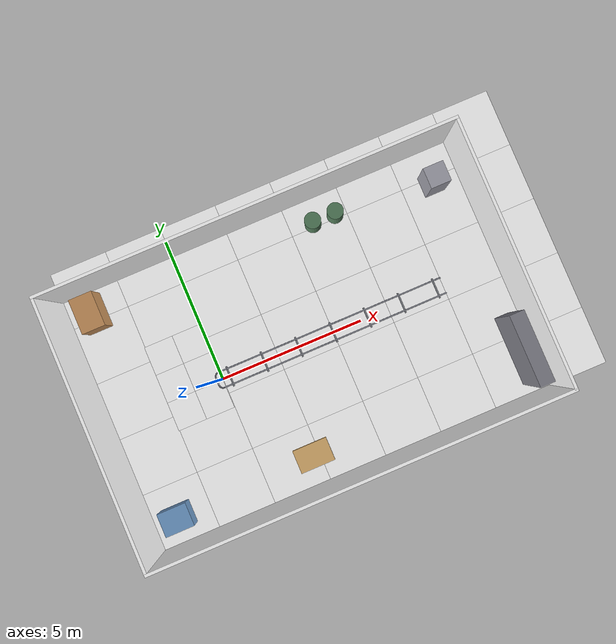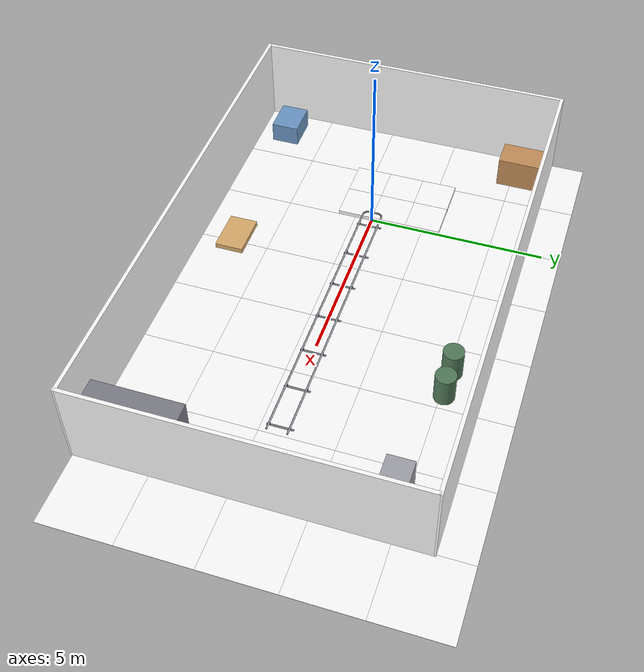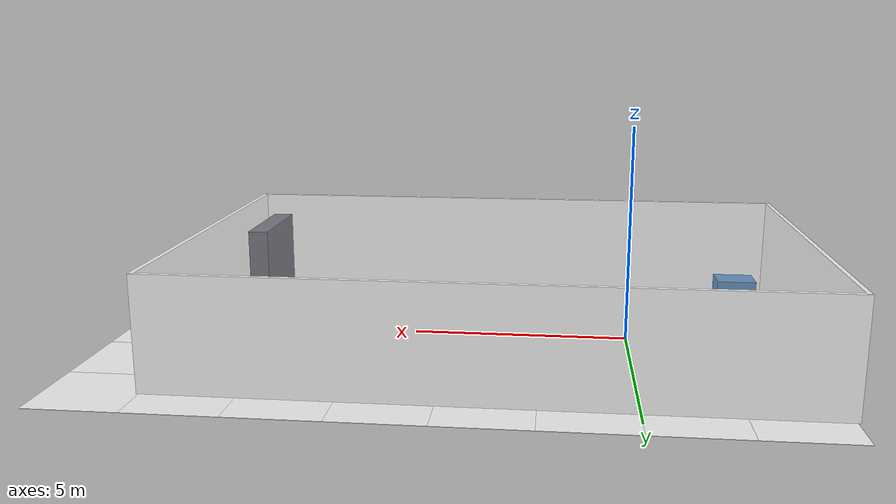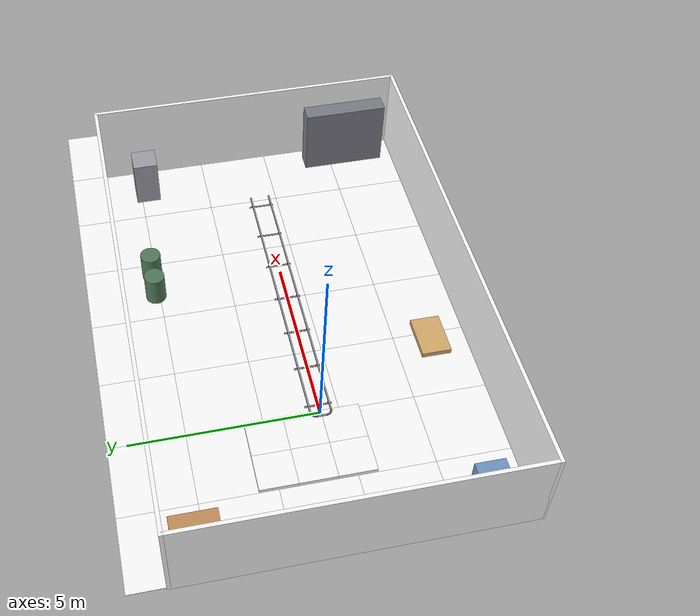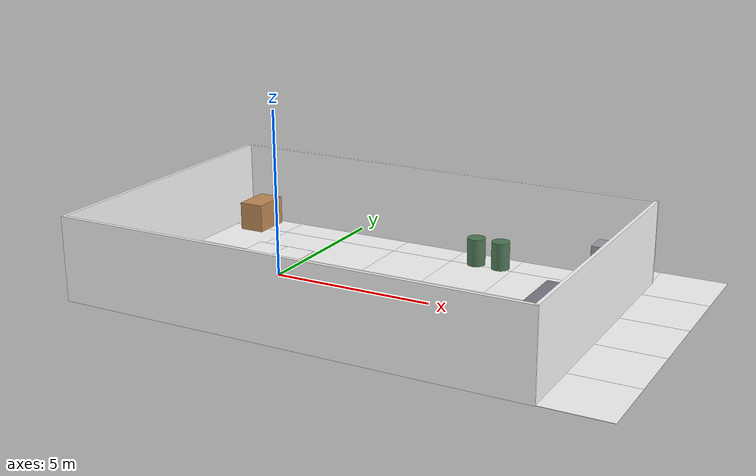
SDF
<?xml version="1.0" ?>
<!-- СГЕНЕРИРОВАНО scripts/gen_rails_world.py, руками не править. -->
<!-- Заезд на рельсы: фанера метр на метр и трубы с П-образным концом. -->
<sdf version="1.9">
  <world name="rails">
    <!-- Шаг 1 мс: у робота 48 отдельных тел роликов, и к ним
         добавился контакт бочки ролика с крутым бортом трубы. -->
    <physics name="1ms" type="dart">
      <max_step_size>0.001</max_step_size>
      <real_time_factor>1.0</real_time_factor>
    </physics>
    <plugin filename="gz-sim-physics-system" name="gz::sim::systems::Physics"/>
    <plugin filename="gz-sim-user-commands-system" name="gz::sim::systems::UserCommands"/>
    <plugin filename="gz-sim-scene-broadcaster-system" name="gz::sim::systems::SceneBroadcaster"/>
    <plugin filename="gz-sim-imu-system" name="gz::sim::systems::Imu"/>
    <plugin filename="gz-sim-sensors-system"
            name="gz::sim::systems::Sensors">
      <render_engine>ogre2</render_engine>
    </plugin>

    <light type="directional" name="sun">
      <cast_shadows>true</cast_shadows>
      <pose>0 0 10 0 0 0</pose>
      <diffuse>0.85 0.85 0.85 1</diffuse>
      <specular>0.25 0.25 0.25 1</specular>
      <direction>-0.4 0.2 -0.9</direction>
    </light>

    <model name="ground_plane">
      <static>true</static>
      <link name="link">
        <collision name="collision">
          <geometry><plane><normal>0 0 1</normal><size>60 60</size></plane></geometry>
          <surface><friction><ode><mu>1.0</mu><mu2>1.0</mu2></ode></friction></surface>
        </collision>
      </link>
    </model>

    <model name="floor">
      <static>true</static>
      <link name="link">
        <visual name="t_0_0">
          <pose>-3.000 -3.500 -0.005 0 0 3.1416</pose>
          <geometry><box><size>2.0 2.0 0.01</size></box></geometry>
          <material><diffuse>1 1 1 1</diffuse>
            <specular>0.1 0.1 0.1 1</specular>
            <pbr><metal><albedo_map>model://maze_nav/meshes/floor.png</albedo_map><roughness>0.9</roughness><metalness>0</metalness></metal></pbr></material>
        </visual>
        <visual name="t_0_1">
          <pose>-3.000 -1.500 -0.005 0 0 1.5708</pose>
          <geometry><box><size>2.0 2.0 0.01</size></box></geometry>
          <material><diffuse>1 1 1 1</diffuse>
            <specular>0.1 0.1 0.1 1</specular>
            <pbr><metal><albedo_map>model://maze_nav/meshes/floor.png</albedo_map><roughness>0.9</roughness><metalness>0</metalness></metal></pbr></material>
        </visual>
        <visual name="t_0_2">
          <pose>-3.000 0.500 -0.005 0 0 4.7124</pose>
          <geometry><box><size>2.0 2.0 0.01</size></box></geometry>
          <material><diffuse>1 1 1 1</diffuse>
            <specular>0.1 0.1 0.1 1</specular>
            <pbr><metal><albedo_map>model://maze_nav/meshes/floor.png</albedo_map><roughness>0.9</roughness><metalness>0</metalness></metal></pbr></material>
        </visual>
        <visual name="t_0_3">
          <pose>-3.000 2.500 -0.005 0 0 0.0000</pose>
          <geometry><box><size>2.0 2.0 0.01</size></box></geometry>
          <material><diffuse>1 1 1 1</diffuse>
            <specular>0.1 0.1 0.1 1</specular>
            <pbr><metal><albedo_map>model://maze_nav/meshes/floor.png</albedo_map><roughness>0.9</roughness><metalness>0</metalness></metal></pbr></material>
        </visual>
        <visual name="t_0_4">
          <pose>-3.000 4.500 -0.005 0 0 0.0000</pose>
          <geometry><box><size>2.0 2.0 0.01</size></box></geometry>
          <material><diffuse>1 1 1 1</diffuse>
            <specular>0.1 0.1 0.1 1</specular>
            <pbr><metal><albedo_map>model://maze_nav/meshes/floor.png</albedo_map><roughness>0.9</roughness><metalness>0</metalness></metal></pbr></material>
        </visual>
        <visual name="t_1_0">
          <pose>-1.000 -3.500 -0.005 0 0 0.0000</pose>
          <geometry><box><size>2.0 2.0 0.01</size></box></geometry>
          <material><diffuse>1 1 1 1</diffuse>
            <specular>0.1 0.1 0.1 1</specular>
            <pbr><metal><albedo_map>model://maze_nav/meshes/floor.png</albedo_map><roughness>0.9</roughness><metalness>0</metalness></metal></pbr></material>
        </visual>
        <visual name="t_1_1">
          <pose>-1.000 -1.500 -0.005 0 0 3.1416</pose>
          <geometry><box><size>2.0 2.0 0.01</size></box></geometry>
          <material><diffuse>1 1 1 1</diffuse>
            <specular>0.1 0.1 0.1 1</specular>
            <pbr><metal><albedo_map>model://maze_nav/meshes/floor.png</albedo_map><roughness>0.9</roughness><metalness>0</metalness></metal></pbr></material>
        </visual>
        <visual name="t_1_2">
          <pose>-1.000 0.500 -0.005 0 0 0.0000</pose>
          <geometry><box><size>2.0 2.0 0.01</size></box></geometry>
          <material><diffuse>1 1 1 1</diffuse>
            <specular>0.1 0.1 0.1 1</specular>
            <pbr><metal><albedo_map>model://maze_nav/meshes/floor.png</albedo_map><roughness>0.9</roughness><metalness>0</metalness></metal></pbr></material>
        </visual>
        <visual name="t_1_3">
          <pose>-1.000 2.500 -0.005 0 0 1.5708</pose>
          <geometry><box><size>2.0 2.0 0.01</size></box></geometry>
          <material><diffuse>1 1 1 1</diffuse>
            <specular>0.1 0.1 0.1 1</specular>
            <pbr><metal><albedo_map>model://maze_nav/meshes/floor.png</albedo_map><roughness>0.9</roughness><metalness>0</metalness></metal></pbr></material>
        </visual>
        <visual name="t_1_4">
          <pose>-1.000 4.500 -0.005 0 0 0.0000</pose>
          <geometry><box><size>2.0 2.0 0.01</size></box></geometry>
          <material><diffuse>1 1 1 1</diffuse>
            <specular>0.1 0.1 0.1 1</specular>
            <pbr><metal><albedo_map>model://maze_nav/meshes/floor.png</albedo_map><roughness>0.9</roughness><metalness>0</metalness></metal></pbr></material>
        </visual>
        <visual name="t_2_0">
          <pose>1.000 -3.500 -0.005 0 0 0.0000</pose>
          <geometry><box><size>2.0 2.0 0.01</size></box></geometry>
          <material><diffuse>1 1 1 1</diffuse>
            <specular>0.1 0.1 0.1 1</specular>
            <pbr><metal><albedo_map>model://maze_nav/meshes/floor.png</albedo_map><roughness>0.9</roughness><metalness>0</metalness></metal></pbr></material>
        </visual>
        <visual name="t_2_1">
          <pose>1.000 -1.500 -0.005 0 0 4.7124</pose>
          <geometry><box><size>2.0 2.0 0.01</size></box></geometry>
          <material><diffuse>1 1 1 1</diffuse>
            <specular>0.1 0.1 0.1 1</specular>
            <pbr><metal><albedo_map>model://maze_nav/meshes/floor.png</albedo_map><roughness>0.9</roughness><metalness>0</metalness></metal></pbr></material>
        </visual>
        <visual name="t_2_2">
          <pose>1.000 0.500 -0.005 0 0 4.7124</pose>
          <geometry><box><size>2.0 2.0 0.01</size></box></geometry>
          <material><diffuse>1 1 1 1</diffuse>
            <specular>0.1 0.1 0.1 1</specular>
            <pbr><metal><albedo_map>model://maze_nav/meshes/floor.png</albedo_map><roughness>0.9</roughness><metalness>0</metalness></metal></pbr></material>
        </visual>
        <visual name="t_2_3">
          <pose>1.000 2.500 -0.005 0 0 0.0000</pose>
          <geometry><box><size>2.0 2.0 0.01</size></box></geometry>
          <material><diffuse>1 1 1 1</diffuse>
            <specular>0.1 0.1 0.1 1</specular>
            <pbr><metal><albedo_map>model://maze_nav/meshes/floor.png</albedo_map><roughness>0.9</roughness><metalness>0</metalness></metal></pbr></material>
        </visual>
        <visual name="t_2_4">
          <pose>1.000 4.500 -0.005 0 0 1.5708</pose>
          <geometry><box><size>2.0 2.0 0.01</size></box></geometry>
          <material><diffuse>1 1 1 1</diffuse>
            <specular>0.1 0.1 0.1 1</specular>
            <pbr><metal><albedo_map>model://maze_nav/meshes/floor.png</albedo_map><roughness>0.9</roughness><metalness>0</metalness></metal></pbr></material>
        </visual>
        <visual name="t_3_0">
          <pose>3.000 -3.500 -0.005 0 0 0.0000</pose>
          <geometry><box><size>2.0 2.0 0.01</size></box></geometry>
          <material><diffuse>1 1 1 1</diffuse>
            <specular>0.1 0.1 0.1 1</specular>
            <pbr><metal><albedo_map>model://maze_nav/meshes/floor.png</albedo_map><roughness>0.9</roughness><metalness>0</metalness></metal></pbr></material>
        </visual>
        <visual name="t_3_1">
          <pose>3.000 -1.500 -0.005 0 0 4.7124</pose>
          <geometry><box><size>2.0 2.0 0.01</size></box></geometry>
          <material><diffuse>1 1 1 1</diffuse>
            <specular>0.1 0.1 0.1 1</specular>
            <pbr><metal><albedo_map>model://maze_nav/meshes/floor.png</albedo_map><roughness>0.9</roughness><metalness>0</metalness></metal></pbr></material>
        </visual>
        <visual name="t_3_2">
          <pose>3.000 0.500 -0.005 0 0 0.0000</pose>
          <geometry><box><size>2.0 2.0 0.01</size></box></geometry>
          <material><diffuse>1 1 1 1</diffuse>
            <specular>0.1 0.1 0.1 1</specular>
            <pbr><metal><albedo_map>model://maze_nav/meshes/floor.png</albedo_map><roughness>0.9</roughness><metalness>0</metalness></metal></pbr></material>
        </visual>
        <visual name="t_3_3">
          <pose>3.000 2.500 -0.005 0 0 0.0000</pose>
          <geometry><box><size>2.0 2.0 0.01</size></box></geometry>
          <material><diffuse>1 1 1 1</diffuse>
            <specular>0.1 0.1 0.1 1</specular>
            <pbr><metal><albedo_map>model://maze_nav/meshes/floor.png</albedo_map><roughness>0.9</roughness><metalness>0</metalness></metal></pbr></material>
        </visual>
        <visual name="t_3_4">
          <pose>3.000 4.500 -0.005 0 0 1.5708</pose>
          <geometry><box><size>2.0 2.0 0.01</size></box></geometry>
          <material><diffuse>1 1 1 1</diffuse>
            <specular>0.1 0.1 0.1 1</specular>
            <pbr><metal><albedo_map>model://maze_nav/meshes/floor.png</albedo_map><roughness>0.9</roughness><metalness>0</metalness></metal></pbr></material>
        </visual>
        <visual name="t_4_0">
          <pose>5.000 -3.500 -0.005 0 0 0.0000</pose>
          <geometry><box><size>2.0 2.0 0.01</size></box></geometry>
          <material><diffuse>1 1 1 1</diffuse>
            <specular>0.1 0.1 0.1 1</specular>
            <pbr><metal><albedo_map>model://maze_nav/meshes/floor.png</albedo_map><roughness>0.9</roughness><metalness>0</metalness></metal></pbr></material>
        </visual>
        <visual name="t_4_1">
          <pose>5.000 -1.500 -0.005 0 0 4.7124</pose>
          <geometry><box><size>2.0 2.0 0.01</size></box></geometry>
          <material><diffuse>1 1 1 1</diffuse>
            <specular>0.1 0.1 0.1 1</specular>
            <pbr><metal><albedo_map>model://maze_nav/meshes/floor.png</albedo_map><roughness>0.9</roughness><metalness>0</metalness></metal></pbr></material>
        </visual>
        <visual name="t_4_2">
          <pose>5.000 0.500 -0.005 0 0 0.0000</pose>
          <geometry><box><size>2.0 2.0 0.01</size></box></geometry>
          <material><diffuse>1 1 1 1</diffuse>
            <specular>0.1 0.1 0.1 1</specular>
            <pbr><metal><albedo_map>model://maze_nav/meshes/floor.png</albedo_map><roughness>0.9</roughness><metalness>0</metalness></metal></pbr></material>
        </visual>
        <visual name="t_4_3">
          <pose>5.000 2.500 -0.005 0 0 1.5708</pose>
          <geometry><box><size>2.0 2.0 0.01</size></box></geometry>
          <material><diffuse>1 1 1 1</diffuse>
            <specular>0.1 0.1 0.1 1</specular>
            <pbr><metal><albedo_map>model://maze_nav/meshes/floor.png</albedo_map><roughness>0.9</roughness><metalness>0</metalness></metal></pbr></material>
        </visual>
        <visual name="t_4_4">
          <pose>5.000 4.500 -0.005 0 0 0.0000</pose>
          <geometry><box><size>2.0 2.0 0.01</size></box></geometry>
          <material><diffuse>1 1 1 1</diffuse>
            <specular>0.1 0.1 0.1 1</specular>
            <pbr><metal><albedo_map>model://maze_nav/meshes/floor.png</albedo_map><roughness>0.9</roughness><metalness>0</metalness></metal></pbr></material>
        </visual>
        <visual name="t_5_0">
          <pose>7.000 -3.500 -0.005 0 0 1.5708</pose>
          <geometry><box><size>2.0 2.0 0.01</size></box></geometry>
          <material><diffuse>1 1 1 1</diffuse>
            <specular>0.1 0.1 0.1 1</specular>
            <pbr><metal><albedo_map>model://maze_nav/meshes/floor.png</albedo_map><roughness>0.9</roughness><metalness>0</metalness></metal></pbr></material>
        </visual>
        <visual name="t_5_1">
          <pose>7.000 -1.500 -0.005 0 0 3.1416</pose>
          <geometry><box><size>2.0 2.0 0.01</size></box></geometry>
          <material><diffuse>1 1 1 1</diffuse>
            <specular>0.1 0.1 0.1 1</specular>
            <pbr><metal><albedo_map>model://maze_nav/meshes/floor.png</albedo_map><roughness>0.9</roughness><metalness>0</metalness></metal></pbr></material>
        </visual>
        <visual name="t_5_2">
          <pose>7.000 0.500 -0.005 0 0 4.7124</pose>
          <geometry><box><size>2.0 2.0 0.01</size></box></geometry>
          <material><diffuse>1 1 1 1</diffuse>
            <specular>0.1 0.1 0.1 1</specular>
            <pbr><metal><albedo_map>model://maze_nav/meshes/floor.png</albedo_map><roughness>0.9</roughness><metalness>0</metalness></metal></pbr></material>
        </visual>
        <visual name="t_5_3">
          <pose>7.000 2.500 -0.005 0 0 1.5708</pose>
          <geometry><box><size>2.0 2.0 0.01</size></box></geometry>
          <material><diffuse>1 1 1 1</diffuse>
            <specular>0.1 0.1 0.1 1</specular>
            <pbr><metal><albedo_map>model://maze_nav/meshes/floor.png</albedo_map><roughness>0.9</roughness><metalness>0</metalness></metal></pbr></material>
        </visual>
        <visual name="t_5_4">
          <pose>7.000 4.500 -0.005 0 0 0.0000</pose>
          <geometry><box><size>2.0 2.0 0.01</size></box></geometry>
          <material><diffuse>1 1 1 1</diffuse>
            <specular>0.1 0.1 0.1 1</specular>
            <pbr><metal><albedo_map>model://maze_nav/meshes/floor.png</albedo_map><roughness>0.9</roughness><metalness>0</metalness></metal></pbr></material>
        </visual>
        <visual name="t_6_0">
          <pose>9.000 -3.500 -0.005 0 0 3.1416</pose>
          <geometry><box><size>2.0 2.0 0.01</size></box></geometry>
          <material><diffuse>1 1 1 1</diffuse>
            <specular>0.1 0.1 0.1 1</specular>
            <pbr><metal><albedo_map>model://maze_nav/meshes/floor.png</albedo_map><roughness>0.9</roughness><metalness>0</metalness></metal></pbr></material>
        </visual>
        <visual name="t_6_1">
          <pose>9.000 -1.500 -0.005 0 0 1.5708</pose>
          <geometry><box><size>2.0 2.0 0.01</size></box></geometry>
          <material><diffuse>1 1 1 1</diffuse>
            <specular>0.1 0.1 0.1 1</specular>
            <pbr><metal><albedo_map>model://maze_nav/meshes/floor.png</albedo_map><roughness>0.9</roughness><metalness>0</metalness></metal></pbr></material>
        </visual>
        <visual name="t_6_2">
          <pose>9.000 0.500 -0.005 0 0 0.0000</pose>
          <geometry><box><size>2.0 2.0 0.01</size></box></geometry>
          <material><diffuse>1 1 1 1</diffuse>
            <specular>0.1 0.1 0.1 1</specular>
            <pbr><metal><albedo_map>model://maze_nav/meshes/floor.png</albedo_map><roughness>0.9</roughness><metalness>0</metalness></metal></pbr></material>
        </visual>
        <visual name="t_6_3">
          <pose>9.000 2.500 -0.005 0 0 1.5708</pose>
          <geometry><box><size>2.0 2.0 0.01</size></box></geometry>
          <material><diffuse>1 1 1 1</diffuse>
            <specular>0.1 0.1 0.1 1</specular>
            <pbr><metal><albedo_map>model://maze_nav/meshes/floor.png</albedo_map><roughness>0.9</roughness><metalness>0</metalness></metal></pbr></material>
        </visual>
        <visual name="t_6_4">
          <pose>9.000 4.500 -0.005 0 0 3.1416</pose>
          <geometry><box><size>2.0 2.0 0.01</size></box></geometry>
          <material><diffuse>1 1 1 1</diffuse>
            <specular>0.1 0.1 0.1 1</specular>
            <pbr><metal><albedo_map>model://maze_nav/meshes/floor.png</albedo_map><roughness>0.9</roughness><metalness>0</metalness></metal></pbr></material>
        </visual>
        <visual name="t_7_0">
          <pose>11.000 -3.500 -0.005 0 0 0.0000</pose>
          <geometry><box><size>2.0 2.0 0.01</size></box></geometry>
          <material><diffuse>1 1 1 1</diffuse>
            <specular>0.1 0.1 0.1 1</specular>
            <pbr><metal><albedo_map>model://maze_nav/meshes/floor.png</albedo_map><roughness>0.9</roughness><metalness>0</metalness></metal></pbr></material>
        </visual>
        <visual name="t_7_1">
          <pose>11.000 -1.500 -0.005 0 0 0.0000</pose>
          <geometry><box><size>2.0 2.0 0.01</size></box></geometry>
          <material><diffuse>1 1 1 1</diffuse>
            <specular>0.1 0.1 0.1 1</specular>
            <pbr><metal><albedo_map>model://maze_nav/meshes/floor.png</albedo_map><roughness>0.9</roughness><metalness>0</metalness></metal></pbr></material>
        </visual>
        <visual name="t_7_2">
          <pose>11.000 0.500 -0.005 0 0 0.0000</pose>
          <geometry><box><size>2.0 2.0 0.01</size></box></geometry>
          <material><diffuse>1 1 1 1</diffuse>
            <specular>0.1 0.1 0.1 1</specular>
            <pbr><metal><albedo_map>model://maze_nav/meshes/floor.png</albedo_map><roughness>0.9</roughness><metalness>0</metalness></metal></pbr></material>
        </visual>
        <visual name="t_7_3">
          <pose>11.000 2.500 -0.005 0 0 1.5708</pose>
          <geometry><box><size>2.0 2.0 0.01</size></box></geometry>
          <material><diffuse>1 1 1 1</diffuse>
            <specular>0.1 0.1 0.1 1</specular>
            <pbr><metal><albedo_map>model://maze_nav/meshes/floor.png</albedo_map><roughness>0.9</roughness><metalness>0</metalness></metal></pbr></material>
        </visual>
        <visual name="t_7_4">
          <pose>11.000 4.500 -0.005 0 0 4.7124</pose>
          <geometry><box><size>2.0 2.0 0.01</size></box></geometry>
          <material><diffuse>1 1 1 1</diffuse>
            <specular>0.1 0.1 0.1 1</specular>
            <pbr><metal><albedo_map>model://maze_nav/meshes/floor.png</albedo_map><roughness>0.9</roughness><metalness>0</metalness></metal></pbr></material>
        </visual>
      </link>
    </model>

    <!-- Стены. Текстура на них мельче и бледнее пола: яркая стена
         даёт слишком жирные признаки, и одометрия в симуляторе
         выглядела бы лучше, чем окажется на железе. -->
    <model name="walls">
      <static>true</static>
      <link name="link">
        <collision name="w0_collision">
          <pose>3.000 4.500 1.250 0 0 0</pose>
          <geometry><box><size>14.100 0.100 2.5</size></box></geometry>
        </collision>
        <visual name="w0_visual">
          <pose>3.000 4.500 1.250 0 0 0</pose>
          <geometry><box><size>14.100 0.100 2.5</size></box></geometry>
          <material><diffuse>1 1 1 1</diffuse>
            <pbr><metal><albedo_map>model://maze_nav/meshes/wall.png</albedo_map><roughness>0.95</roughness><metalness>0</metalness></metal></pbr></material>
        </visual>
        <collision name="w1_collision">
          <pose>3.000 -4.500 1.250 0 0 0</pose>
          <geometry><box><size>14.100 0.100 2.5</size></box></geometry>
        </collision>
        <visual name="w1_visual">
          <pose>3.000 -4.500 1.250 0 0 0</pose>
          <geometry><box><size>14.100 0.100 2.5</size></box></geometry>
          <material><diffuse>1 1 1 1</diffuse>
            <pbr><metal><albedo_map>model://maze_nav/meshes/wall.png</albedo_map><roughness>0.95</roughness><metalness>0</metalness></metal></pbr></material>
        </visual>
        <collision name="w2_collision">
          <pose>-4.000 0.000 1.250 0 0 0</pose>
          <geometry><box><size>0.100 9.000 2.5</size></box></geometry>
        </collision>
        <visual name="w2_visual">
          <pose>-4.000 0.000 1.250 0 0 0</pose>
          <geometry><box><size>0.100 9.000 2.5</size></box></geometry>
          <material><diffuse>1 1 1 1</diffuse>
            <pbr><metal><albedo_map>model://maze_nav/meshes/wall.png</albedo_map><roughness>0.95</roughness><metalness>0</metalness></metal></pbr></material>
        </visual>
        <collision name="w3_collision">
          <pose>10.000 0.000 1.250 0 0 0</pose>
          <geometry><box><size>0.100 9.000 2.5</size></box></geometry>
        </collision>
        <visual name="w3_visual">
          <pose>10.000 0.000 1.250 0 0 0</pose>
          <geometry><box><size>0.100 9.000 2.5</size></box></geometry>
          <material><diffuse>1 1 1 1</diffuse>
            <pbr><metal><albedo_map>model://maze_nav/meshes/wall.png</albedo_map><roughness>0.95</roughness><metalness>0</metalness></metal></pbr></material>
        </visual>
      </link>
    </model>

    <!-- Предметы. Стоят по краям, чтобы не мешать заезду, но
         попадали в кадр при осмотре: вертикальные грани дают
         признаки, которых нет ни на полу, ни на гладкой стене. -->
    <model name="obj_0">
      <static>true</static>
      <link name="link">
        <collision name="collision">
          <pose>-3.100 3.700 0.450 0 0 0</pose>
          <geometry><box><size>0.8 1.2 0.9</size></box></geometry>
        </collision>
        <visual name="visual">
          <pose>-3.100 3.700 0.450 0 0 0</pose>
          <geometry><box><size>0.8 1.2 0.9</size></box></geometry>
          <material><ambient>0.55 0.40 0.25 1</ambient>
            <diffuse>0.77 0.56 0.35 1</diffuse></material>
        </visual>
      </link>
    </model>
    <model name="obj_1">
      <static>true</static>
      <link name="link">
        <collision name="collision">
          <pose>-3.100 -3.600 0.300 0 0 0</pose>
          <geometry><box><size>1.0 0.8 0.6</size></box></geometry>
        </collision>
        <visual name="visual">
          <pose>-3.100 -3.600 0.300 0 0 0</pose>
          <geometry><box><size>1.0 0.8 0.6</size></box></geometry>
          <material><ambient>0.30 0.42 0.55 1</ambient>
            <diffuse>0.42 0.59 0.77 1</diffuse></material>
        </visual>
      </link>
    </model>
    <model name="obj_2">
      <static>true</static>
      <link name="link">
        <collision name="collision">
          <pose>9.000 3.300 0.700 0 0 0</pose>
          <geometry><box><size>0.7 0.7 1.4</size></box></geometry>
        </collision>
        <visual name="visual">
          <pose>9.000 3.300 0.700 0 0 0</pose>
          <geometry><box><size>0.7 0.7 1.4</size></box></geometry>
          <material><ambient>0.45 0.45 0.48 1</ambient>
            <diffuse>0.63 0.63 0.67 1</diffuse></material>
        </visual>
      </link>
    </model>
    <model name="obj_3">
      <static>true</static>
      <link name="link">
        <collision name="collision">
          <pose>9.400 -2.900 1.000 0 0 0</pose>
          <geometry><box><size>0.5 2.4 2.0</size></box></geometry>
        </collision>
        <visual name="visual">
          <pose>9.400 -2.900 1.000 0 0 0</pose>
          <geometry><box><size>0.5 2.4 2.0</size></box></geometry>
          <material><ambient>0.35 0.35 0.38 1</ambient>
            <diffuse>0.49 0.49 0.53 1</diffuse></material>
        </visual>
      </link>
    </model>
    <model name="obj_4">
      <static>true</static>
      <link name="link">
        <collision name="collision">
          <pose>1.800 -3.500 0.075 0 0 0</pose>
          <geometry><box><size>1.2 0.8 0.15</size></box></geometry>
        </collision>
        <visual name="visual">
          <pose>1.800 -3.500 0.075 0 0 0</pose>
          <geometry><box><size>1.2 0.8 0.15</size></box></geometry>
          <material><ambient>0.60 0.48 0.30 1</ambient>
            <diffuse>0.84 0.67 0.42 1</diffuse></material>
        </visual>
      </link>
    </model>
    <model name="drum_0">
      <static>true</static>
      <link name="link">
        <collision name="collision">
          <pose>4.800 3.600 0.425 0 0 0</pose>
          <geometry><cylinder><radius>0.28</radius><length>0.85</length></cylinder></geometry>
        </collision>
        <visual name="visual">
          <pose>4.800 3.600 0.425 0 0 0</pose>
          <geometry><cylinder><radius>0.28</radius><length>0.85</length></cylinder></geometry>
          <material><ambient>0.20 0.30 0.22 1</ambient>
            <diffuse>0.32 0.48 0.35 1</diffuse></material>
        </visual>
      </link>
    </model>
    <model name="drum_1">
      <static>true</static>
      <link name="link">
        <collision name="collision">
          <pose>5.600 3.600 0.425 0 0 0</pose>
          <geometry><cylinder><radius>0.28</radius><length>0.85</length></cylinder></geometry>
        </collision>
        <visual name="visual">
          <pose>5.600 3.600 0.425 0 0 0</pose>
          <geometry><cylinder><radius>0.28</radius><length>0.85</length></cylinder></geometry>
          <material><ambient>0.20 0.30 0.22 1</ambient>
            <diffuse>0.32 0.48 0.35 1</diffuse></material>
        </visual>
      </link>
    </model>

    <model name="deck">
      <static>true</static>
      <link name="link">
        <collision name="collision">
          <pose>-1.0000 0.5000 0.0600 0 0 0</pose>
          <geometry><box><size>2.000 3.000 0.1200</size></box></geometry>
          <surface><friction><ode><mu>0.9</mu><mu2>0.9</mu2></ode></friction></surface>
        </collision>
        <visual name="sheet_0_0">
          <pose>-1.5000 -0.5000 0.0600 0 0 0.0000</pose>
          <geometry><box><size>1.0000 1.0000 0.1200</size></box></geometry>
          <material><diffuse>1 1 1 1</diffuse>
            <pbr><metal><albedo_map>model://maze_nav/meshes/plywood.png</albedo_map><roughness>0.85</roughness><metalness>0</metalness></metal></pbr></material>
        </visual>
        <visual name="sheet_0_1">
          <pose>-1.5000 0.5000 0.0600 0 0 1.5708</pose>
          <geometry><box><size>1.0000 1.0000 0.1200</size></box></geometry>
          <material><diffuse>1 1 1 1</diffuse>
            <pbr><metal><albedo_map>model://maze_nav/meshes/plywood.png</albedo_map><roughness>0.85</roughness><metalness>0</metalness></metal></pbr></material>
        </visual>
        <visual name="sheet_0_2">
          <pose>-1.5000 1.5000 0.0600 0 0 0.0000</pose>
          <geometry><box><size>1.0000 1.0000 0.1200</size></box></geometry>
          <material><diffuse>1 1 1 1</diffuse>
            <pbr><metal><albedo_map>model://maze_nav/meshes/plywood.png</albedo_map><roughness>0.85</roughness><metalness>0</metalness></metal></pbr></material>
        </visual>
        <visual name="sheet_1_0">
          <pose>-0.5000 -0.5000 0.0600 0 0 1.5708</pose>
          <geometry><box><size>1.0000 1.0000 0.1200</size></box></geometry>
          <material><diffuse>1 1 1 1</diffuse>
            <pbr><metal><albedo_map>model://maze_nav/meshes/plywood.png</albedo_map><roughness>0.85</roughness><metalness>0</metalness></metal></pbr></material>
        </visual>
        <visual name="sheet_1_1">
          <pose>-0.5000 0.5000 0.0600 0 0 0.0000</pose>
          <geometry><box><size>1.0000 1.0000 0.1200</size></box></geometry>
          <material><diffuse>1 1 1 1</diffuse>
            <pbr><metal><albedo_map>model://maze_nav/meshes/plywood.png</albedo_map><roughness>0.85</roughness><metalness>0</metalness></metal></pbr></material>
        </visual>
        <visual name="sheet_1_2">
          <pose>-0.5000 1.5000 0.0600 0 0 1.5708</pose>
          <geometry><box><size>1.0000 1.0000 0.1200</size></box></geometry>
          <material><diffuse>1 1 1 1</diffuse>
            <pbr><metal><albedo_map>model://maze_nav/meshes/plywood.png</albedo_map><roughness>0.85</roughness><metalness>0</metalness></metal></pbr></material>
        </visual>
      </link>
    </model>

    <!-- Рельсы: труба 51x2 мм,
         колея 545 мм, П-образный конец с радиусом
         145 мм и прямой перемычкой 255 мм.
         Масса прямых участков 39 кг. -->
    <model name="rails">
      <static>true</static>
      <link name="link">
        <collision name="collision_rail_l">
          <pose>3.9803 0.2725 0.1455 0 1.570796 0</pose>
          <geometry><cylinder><radius>0.02550</radius><length>8.0395</length></cylinder></geometry>
          <surface><friction><ode><mu>0.6</mu><mu2>0.6</mu2></ode></friction></surface>
        </collision>
        <visual name="visual_rail_l">
          <pose>3.9803 0.2725 0.1455 0 1.570796 0</pose>
          <geometry><cylinder><radius>0.02550</radius><length>8.0395</length></cylinder></geometry>
          <material><ambient>0.30 0.30 0.33 1</ambient>
            <diffuse>0.55 0.56 0.60 1</diffuse>
            <specular>0.45 0.45 0.45 1</specular></material>
        </visual>
        <collision name="collision_rail_r">
          <pose>3.9803 -0.2725 0.1455 0 1.570796 0</pose>
          <geometry><cylinder><radius>0.02550</radius><length>8.0395</length></cylinder></geometry>
          <surface><friction><ode><mu>0.6</mu><mu2>0.6</mu2></ode></friction></surface>
        </collision>
        <visual name="visual_rail_r">
          <pose>3.9803 -0.2725 0.1455 0 1.570796 0</pose>
          <geometry><cylinder><radius>0.02550</radius><length>8.0395</length></cylinder></geometry>
          <material><ambient>0.30 0.30 0.33 1</ambient>
            <diffuse>0.55 0.56 0.60 1</diffuse>
            <specular>0.45 0.45 0.45 1</specular></material>
        </visual>
        <collision name="collision_cross">
          <pose>-0.1845 0 0.1455 1.570796 0 0</pose>
          <geometry><cylinder><radius>0.02550</radius><length>0.2550</length></cylinder></geometry>
          <surface><friction><ode><mu>0.6</mu><mu2>0.6</mu2></ode></friction></surface>
        </collision>
        <visual name="visual_cross">
          <pose>-0.1845 0 0.1455 1.570796 0 0</pose>
          <geometry><cylinder><radius>0.02550</radius><length>0.2550</length></cylinder></geometry>
          <material><ambient>0.30 0.30 0.33 1</ambient>
            <diffuse>0.55 0.56 0.60 1</diffuse>
            <specular>0.45 0.45 0.45 1</specular></material>
        </visual>
        <collision name="collision_arc_l_0">
          <pose>-0.1843 0.1356 0.1455 0 1.570796 1.514696</pose>
          <geometry><cylinder><radius>0.02550</radius><length>0.0187</length></cylinder></geometry>
          <surface><friction><ode><mu>0.6</mu><mu2>0.6</mu2></ode></friction></surface>
        </collision>
        <visual name="visual_arc_l_0">
          <pose>-0.1843 0.1356 0.1455 0 1.570796 1.514696</pose>
          <geometry><cylinder><radius>0.02550</radius><length>0.0187</length></cylinder></geometry>
          <material><ambient>0.30 0.30 0.33 1</ambient>
            <diffuse>0.55 0.56 0.60 1</diffuse>
            <specular>0.45 0.45 0.45 1</specular></material>
        </visual>
        <collision name="collision_arc_l_1">
          <pose>-0.1825 0.1518 0.1455 0 1.570796 1.402497</pose>
          <geometry><cylinder><radius>0.02550</radius><length>0.0187</length></cylinder></geometry>
          <surface><friction><ode><mu>0.6</mu><mu2>0.6</mu2></ode></friction></surface>
        </collision>
        <visual name="visual_arc_l_1">
          <pose>-0.1825 0.1518 0.1455 0 1.570796 1.402497</pose>
          <geometry><cylinder><radius>0.02550</radius><length>0.0187</length></cylinder></geometry>
          <material><ambient>0.30 0.30 0.33 1</ambient>
            <diffuse>0.55 0.56 0.60 1</diffuse>
            <specular>0.45 0.45 0.45 1</specular></material>
        </visual>
        <collision name="collision_arc_l_2">
          <pose>-0.1788 0.1676 0.1455 0 1.570796 1.290297</pose>
          <geometry><cylinder><radius>0.02550</radius><length>0.0187</length></cylinder></geometry>
          <surface><friction><ode><mu>0.6</mu><mu2>0.6</mu2></ode></friction></surface>
        </collision>
        <visual name="visual_arc_l_2">
          <pose>-0.1788 0.1676 0.1455 0 1.570796 1.290297</pose>
          <geometry><cylinder><radius>0.02550</radius><length>0.0187</length></cylinder></geometry>
          <material><ambient>0.30 0.30 0.33 1</ambient>
            <diffuse>0.55 0.56 0.60 1</diffuse>
            <specular>0.45 0.45 0.45 1</specular></material>
        </visual>
        <collision name="collision_arc_l_3">
          <pose>-0.1735 0.1830 0.1455 0 1.570796 1.178097</pose>
          <geometry><cylinder><radius>0.02550</radius><length>0.0187</length></cylinder></geometry>
          <surface><friction><ode><mu>0.6</mu><mu2>0.6</mu2></ode></friction></surface>
        </collision>
        <visual name="visual_arc_l_3">
          <pose>-0.1735 0.1830 0.1455 0 1.570796 1.178097</pose>
          <geometry><cylinder><radius>0.02550</radius><length>0.0187</length></cylinder></geometry>
          <material><ambient>0.30 0.30 0.33 1</ambient>
            <diffuse>0.55 0.56 0.60 1</diffuse>
            <specular>0.45 0.45 0.45 1</specular></material>
        </visual>
        <collision name="collision_arc_l_4">
          <pose>-0.1664 0.1976 0.1455 0 1.570796 1.065898</pose>
          <geometry><cylinder><radius>0.02550</radius><length>0.0187</length></cylinder></geometry>
          <surface><friction><ode><mu>0.6</mu><mu2>0.6</mu2></ode></friction></surface>
        </collision>
        <visual name="visual_arc_l_4">
          <pose>-0.1664 0.1976 0.1455 0 1.570796 1.065898</pose>
          <geometry><cylinder><radius>0.02550</radius><length>0.0187</length></cylinder></geometry>
          <material><ambient>0.30 0.30 0.33 1</ambient>
            <diffuse>0.55 0.56 0.60 1</diffuse>
            <specular>0.45 0.45 0.45 1</specular></material>
        </visual>
        <collision name="collision_arc_l_5">
          <pose>-0.1578 0.2114 0.1455 0 1.570796 0.953698</pose>
          <geometry><cylinder><radius>0.02550</radius><length>0.0187</length></cylinder></geometry>
          <surface><friction><ode><mu>0.6</mu><mu2>0.6</mu2></ode></friction></surface>
        </collision>
        <visual name="visual_arc_l_5">
          <pose>-0.1578 0.2114 0.1455 0 1.570796 0.953698</pose>
          <geometry><cylinder><radius>0.02550</radius><length>0.0187</length></cylinder></geometry>
          <material><ambient>0.30 0.30 0.33 1</ambient>
            <diffuse>0.55 0.56 0.60 1</diffuse>
            <specular>0.45 0.45 0.45 1</specular></material>
        </visual>
        <collision name="collision_arc_l_6">
          <pose>-0.1476 0.2241 0.1455 0 1.570796 0.841498</pose>
          <geometry><cylinder><radius>0.02550</radius><length>0.0187</length></cylinder></geometry>
          <surface><friction><ode><mu>0.6</mu><mu2>0.6</mu2></ode></friction></surface>
        </collision>
        <visual name="visual_arc_l_6">
          <pose>-0.1476 0.2241 0.1455 0 1.570796 0.841498</pose>
          <geometry><cylinder><radius>0.02550</radius><length>0.0187</length></cylinder></geometry>
          <material><ambient>0.30 0.30 0.33 1</ambient>
            <diffuse>0.55 0.56 0.60 1</diffuse>
            <specular>0.45 0.45 0.45 1</specular></material>
        </visual>
        <collision name="collision_arc_l_7">
          <pose>-0.1361 0.2356 0.1455 0 1.570796 0.729298</pose>
          <geometry><cylinder><radius>0.02550</radius><length>0.0187</length></cylinder></geometry>
          <surface><friction><ode><mu>0.6</mu><mu2>0.6</mu2></ode></friction></surface>
        </collision>
        <visual name="visual_arc_l_7">
          <pose>-0.1361 0.2356 0.1455 0 1.570796 0.729298</pose>
          <geometry><cylinder><radius>0.02550</radius><length>0.0187</length></cylinder></geometry>
          <material><ambient>0.30 0.30 0.33 1</ambient>
            <diffuse>0.55 0.56 0.60 1</diffuse>
            <specular>0.45 0.45 0.45 1</specular></material>
        </visual>
        <collision name="collision_arc_l_8">
          <pose>-0.1234 0.2458 0.1455 0 1.570796 0.617099</pose>
          <geometry><cylinder><radius>0.02550</radius><length>0.0187</length></cylinder></geometry>
          <surface><friction><ode><mu>0.6</mu><mu2>0.6</mu2></ode></friction></surface>
        </collision>
        <visual name="visual_arc_l_8">
          <pose>-0.1234 0.2458 0.1455 0 1.570796 0.617099</pose>
          <geometry><cylinder><radius>0.02550</radius><length>0.0187</length></cylinder></geometry>
          <material><ambient>0.30 0.30 0.33 1</ambient>
            <diffuse>0.55 0.56 0.60 1</diffuse>
            <specular>0.45 0.45 0.45 1</specular></material>
        </visual>
        <collision name="collision_arc_l_9">
          <pose>-0.1096 0.2544 0.1455 0 1.570796 0.504899</pose>
          <geometry><cylinder><radius>0.02550</radius><length>0.0187</length></cylinder></geometry>
          <surface><friction><ode><mu>0.6</mu><mu2>0.6</mu2></ode></friction></surface>
        </collision>
        <visual name="visual_arc_l_9">
          <pose>-0.1096 0.2544 0.1455 0 1.570796 0.504899</pose>
          <geometry><cylinder><radius>0.02550</radius><length>0.0187</length></cylinder></geometry>
          <material><ambient>0.30 0.30 0.33 1</ambient>
            <diffuse>0.55 0.56 0.60 1</diffuse>
            <specular>0.45 0.45 0.45 1</specular></material>
        </visual>
        <collision name="collision_arc_l_10">
          <pose>-0.0950 0.2615 0.1455 0 1.570796 0.392699</pose>
          <geometry><cylinder><radius>0.02550</radius><length>0.0187</length></cylinder></geometry>
          <surface><friction><ode><mu>0.6</mu><mu2>0.6</mu2></ode></friction></surface>
        </collision>
        <visual name="visual_arc_l_10">
          <pose>-0.0950 0.2615 0.1455 0 1.570796 0.392699</pose>
          <geometry><cylinder><radius>0.02550</radius><length>0.0187</length></cylinder></geometry>
          <material><ambient>0.30 0.30 0.33 1</ambient>
            <diffuse>0.55 0.56 0.60 1</diffuse>
            <specular>0.45 0.45 0.45 1</specular></material>
        </visual>
        <collision name="collision_arc_l_11">
          <pose>-0.0796 0.2668 0.1455 0 1.570796 0.280499</pose>
          <geometry><cylinder><radius>0.02550</radius><length>0.0187</length></cylinder></geometry>
          <surface><friction><ode><mu>0.6</mu><mu2>0.6</mu2></ode></friction></surface>
        </collision>
        <visual name="visual_arc_l_11">
          <pose>-0.0796 0.2668 0.1455 0 1.570796 0.280499</pose>
          <geometry><cylinder><radius>0.02550</radius><length>0.0187</length></cylinder></geometry>
          <material><ambient>0.30 0.30 0.33 1</ambient>
            <diffuse>0.55 0.56 0.60 1</diffuse>
            <specular>0.45 0.45 0.45 1</specular></material>
        </visual>
        <collision name="collision_arc_l_12">
          <pose>-0.0638 0.2705 0.1455 0 1.570796 0.168300</pose>
          <geometry><cylinder><radius>0.02550</radius><length>0.0187</length></cylinder></geometry>
          <surface><friction><ode><mu>0.6</mu><mu2>0.6</mu2></ode></friction></surface>
        </collision>
        <visual name="visual_arc_l_12">
          <pose>-0.0638 0.2705 0.1455 0 1.570796 0.168300</pose>
          <geometry><cylinder><radius>0.02550</radius><length>0.0187</length></cylinder></geometry>
          <material><ambient>0.30 0.30 0.33 1</ambient>
            <diffuse>0.55 0.56 0.60 1</diffuse>
            <specular>0.45 0.45 0.45 1</specular></material>
        </visual>
        <collision name="collision_arc_l_13">
          <pose>-0.0476 0.2723 0.1455 0 1.570796 0.056100</pose>
          <geometry><cylinder><radius>0.02550</radius><length>0.0187</length></cylinder></geometry>
          <surface><friction><ode><mu>0.6</mu><mu2>0.6</mu2></ode></friction></surface>
        </collision>
        <visual name="visual_arc_l_13">
          <pose>-0.0476 0.2723 0.1455 0 1.570796 0.056100</pose>
          <geometry><cylinder><radius>0.02550</radius><length>0.0187</length></cylinder></geometry>
          <material><ambient>0.30 0.30 0.33 1</ambient>
            <diffuse>0.55 0.56 0.60 1</diffuse>
            <specular>0.45 0.45 0.45 1</specular></material>
        </visual>
        <collision name="collision_arc_r_0">
          <pose>-0.1843 -0.1356 0.1455 0 1.570796 -1.514696</pose>
          <geometry><cylinder><radius>0.02550</radius><length>0.0187</length></cylinder></geometry>
          <surface><friction><ode><mu>0.6</mu><mu2>0.6</mu2></ode></friction></surface>
        </collision>
        <visual name="visual_arc_r_0">
          <pose>-0.1843 -0.1356 0.1455 0 1.570796 -1.514696</pose>
          <geometry><cylinder><radius>0.02550</radius><length>0.0187</length></cylinder></geometry>
          <material><ambient>0.30 0.30 0.33 1</ambient>
            <diffuse>0.55 0.56 0.60 1</diffuse>
            <specular>0.45 0.45 0.45 1</specular></material>
        </visual>
        <collision name="collision_arc_r_1">
          <pose>-0.1825 -0.1518 0.1455 0 1.570796 -1.402497</pose>
          <geometry><cylinder><radius>0.02550</radius><length>0.0187</length></cylinder></geometry>
          <surface><friction><ode><mu>0.6</mu><mu2>0.6</mu2></ode></friction></surface>
        </collision>
        <visual name="visual_arc_r_1">
          <pose>-0.1825 -0.1518 0.1455 0 1.570796 -1.402497</pose>
          <geometry><cylinder><radius>0.02550</radius><length>0.0187</length></cylinder></geometry>
          <material><ambient>0.30 0.30 0.33 1</ambient>
            <diffuse>0.55 0.56 0.60 1</diffuse>
            <specular>0.45 0.45 0.45 1</specular></material>
        </visual>
        <collision name="collision_arc_r_2">
          <pose>-0.1788 -0.1676 0.1455 0 1.570796 -1.290297</pose>
          <geometry><cylinder><radius>0.02550</radius><length>0.0187</length></cylinder></geometry>
          <surface><friction><ode><mu>0.6</mu><mu2>0.6</mu2></ode></friction></surface>
        </collision>
        <visual name="visual_arc_r_2">
          <pose>-0.1788 -0.1676 0.1455 0 1.570796 -1.290297</pose>
          <geometry><cylinder><radius>0.02550</radius><length>0.0187</length></cylinder></geometry>
          <material><ambient>0.30 0.30 0.33 1</ambient>
            <diffuse>0.55 0.56 0.60 1</diffuse>
            <specular>0.45 0.45 0.45 1</specular></material>
        </visual>
        <collision name="collision_arc_r_3">
          <pose>-0.1735 -0.1830 0.1455 0 1.570796 -1.178097</pose>
          <geometry><cylinder><radius>0.02550</radius><length>0.0187</length></cylinder></geometry>
          <surface><friction><ode><mu>0.6</mu><mu2>0.6</mu2></ode></friction></surface>
        </collision>
        <visual name="visual_arc_r_3">
          <pose>-0.1735 -0.1830 0.1455 0 1.570796 -1.178097</pose>
          <geometry><cylinder><radius>0.02550</radius><length>0.0187</length></cylinder></geometry>
          <material><ambient>0.30 0.30 0.33 1</ambient>
            <diffuse>0.55 0.56 0.60 1</diffuse>
            <specular>0.45 0.45 0.45 1</specular></material>
        </visual>
        <collision name="collision_arc_r_4">
          <pose>-0.1664 -0.1976 0.1455 0 1.570796 -1.065898</pose>
          <geometry><cylinder><radius>0.02550</radius><length>0.0187</length></cylinder></geometry>
          <surface><friction><ode><mu>0.6</mu><mu2>0.6</mu2></ode></friction></surface>
        </collision>
        <visual name="visual_arc_r_4">
          <pose>-0.1664 -0.1976 0.1455 0 1.570796 -1.065898</pose>
          <geometry><cylinder><radius>0.02550</radius><length>0.0187</length></cylinder></geometry>
          <material><ambient>0.30 0.30 0.33 1</ambient>
            <diffuse>0.55 0.56 0.60 1</diffuse>
            <specular>0.45 0.45 0.45 1</specular></material>
        </visual>
        <collision name="collision_arc_r_5">
          <pose>-0.1578 -0.2114 0.1455 0 1.570796 -0.953698</pose>
          <geometry><cylinder><radius>0.02550</radius><length>0.0187</length></cylinder></geometry>
          <surface><friction><ode><mu>0.6</mu><mu2>0.6</mu2></ode></friction></surface>
        </collision>
        <visual name="visual_arc_r_5">
          <pose>-0.1578 -0.2114 0.1455 0 1.570796 -0.953698</pose>
          <geometry><cylinder><radius>0.02550</radius><length>0.0187</length></cylinder></geometry>
          <material><ambient>0.30 0.30 0.33 1</ambient>
            <diffuse>0.55 0.56 0.60 1</diffuse>
            <specular>0.45 0.45 0.45 1</specular></material>
        </visual>
        <collision name="collision_arc_r_6">
          <pose>-0.1476 -0.2241 0.1455 0 1.570796 -0.841498</pose>
          <geometry><cylinder><radius>0.02550</radius><length>0.0187</length></cylinder></geometry>
          <surface><friction><ode><mu>0.6</mu><mu2>0.6</mu2></ode></friction></surface>
        </collision>
        <visual name="visual_arc_r_6">
          <pose>-0.1476 -0.2241 0.1455 0 1.570796 -0.841498</pose>
          <geometry><cylinder><radius>0.02550</radius><length>0.0187</length></cylinder></geometry>
          <material><ambient>0.30 0.30 0.33 1</ambient>
            <diffuse>0.55 0.56 0.60 1</diffuse>
            <specular>0.45 0.45 0.45 1</specular></material>
        </visual>
        <collision name="collision_arc_r_7">
          <pose>-0.1361 -0.2356 0.1455 0 1.570796 -0.729298</pose>
          <geometry><cylinder><radius>0.02550</radius><length>0.0187</length></cylinder></geometry>
          <surface><friction><ode><mu>0.6</mu><mu2>0.6</mu2></ode></friction></surface>
        </collision>
        <visual name="visual_arc_r_7">
          <pose>-0.1361 -0.2356 0.1455 0 1.570796 -0.729298</pose>
          <geometry><cylinder><radius>0.02550</radius><length>0.0187</length></cylinder></geometry>
          <material><ambient>0.30 0.30 0.33 1</ambient>
            <diffuse>0.55 0.56 0.60 1</diffuse>
            <specular>0.45 0.45 0.45 1</specular></material>
        </visual>
        <collision name="collision_arc_r_8">
          <pose>-0.1234 -0.2458 0.1455 0 1.570796 -0.617099</pose>
          <geometry><cylinder><radius>0.02550</radius><length>0.0187</length></cylinder></geometry>
          <surface><friction><ode><mu>0.6</mu><mu2>0.6</mu2></ode></friction></surface>
        </collision>
        <visual name="visual_arc_r_8">
          <pose>-0.1234 -0.2458 0.1455 0 1.570796 -0.617099</pose>
          <geometry><cylinder><radius>0.02550</radius><length>0.0187</length></cylinder></geometry>
          <material><ambient>0.30 0.30 0.33 1</ambient>
            <diffuse>0.55 0.56 0.60 1</diffuse>
            <specular>0.45 0.45 0.45 1</specular></material>
        </visual>
        <collision name="collision_arc_r_9">
          <pose>-0.1096 -0.2544 0.1455 0 1.570796 -0.504899</pose>
          <geometry><cylinder><radius>0.02550</radius><length>0.0187</length></cylinder></geometry>
          <surface><friction><ode><mu>0.6</mu><mu2>0.6</mu2></ode></friction></surface>
        </collision>
        <visual name="visual_arc_r_9">
          <pose>-0.1096 -0.2544 0.1455 0 1.570796 -0.504899</pose>
          <geometry><cylinder><radius>0.02550</radius><length>0.0187</length></cylinder></geometry>
          <material><ambient>0.30 0.30 0.33 1</ambient>
            <diffuse>0.55 0.56 0.60 1</diffuse>
            <specular>0.45 0.45 0.45 1</specular></material>
        </visual>
        <collision name="collision_arc_r_10">
          <pose>-0.0950 -0.2615 0.1455 0 1.570796 -0.392699</pose>
          <geometry><cylinder><radius>0.02550</radius><length>0.0187</length></cylinder></geometry>
          <surface><friction><ode><mu>0.6</mu><mu2>0.6</mu2></ode></friction></surface>
        </collision>
        <visual name="visual_arc_r_10">
          <pose>-0.0950 -0.2615 0.1455 0 1.570796 -0.392699</pose>
          <geometry><cylinder><radius>0.02550</radius><length>0.0187</length></cylinder></geometry>
          <material><ambient>0.30 0.30 0.33 1</ambient>
            <diffuse>0.55 0.56 0.60 1</diffuse>
            <specular>0.45 0.45 0.45 1</specular></material>
        </visual>
        <collision name="collision_arc_r_11">
          <pose>-0.0796 -0.2668 0.1455 0 1.570796 -0.280499</pose>
          <geometry><cylinder><radius>0.02550</radius><length>0.0187</length></cylinder></geometry>
          <surface><friction><ode><mu>0.6</mu><mu2>0.6</mu2></ode></friction></surface>
        </collision>
        <visual name="visual_arc_r_11">
          <pose>-0.0796 -0.2668 0.1455 0 1.570796 -0.280499</pose>
          <geometry><cylinder><radius>0.02550</radius><length>0.0187</length></cylinder></geometry>
          <material><ambient>0.30 0.30 0.33 1</ambient>
            <diffuse>0.55 0.56 0.60 1</diffuse>
            <specular>0.45 0.45 0.45 1</specular></material>
        </visual>
        <collision name="collision_arc_r_12">
          <pose>-0.0638 -0.2705 0.1455 0 1.570796 -0.168300</pose>
          <geometry><cylinder><radius>0.02550</radius><length>0.0187</length></cylinder></geometry>
          <surface><friction><ode><mu>0.6</mu><mu2>0.6</mu2></ode></friction></surface>
        </collision>
        <visual name="visual_arc_r_12">
          <pose>-0.0638 -0.2705 0.1455 0 1.570796 -0.168300</pose>
          <geometry><cylinder><radius>0.02550</radius><length>0.0187</length></cylinder></geometry>
          <material><ambient>0.30 0.30 0.33 1</ambient>
            <diffuse>0.55 0.56 0.60 1</diffuse>
            <specular>0.45 0.45 0.45 1</specular></material>
        </visual>
        <collision name="collision_arc_r_13">
          <pose>-0.0476 -0.2723 0.1455 0 1.570796 -0.056100</pose>
          <geometry><cylinder><radius>0.02550</radius><length>0.0187</length></cylinder></geometry>
          <surface><friction><ode><mu>0.6</mu><mu2>0.6</mu2></ode></friction></surface>
        </collision>
        <visual name="visual_arc_r_13">
          <pose>-0.0476 -0.2723 0.1455 0 1.570796 -0.056100</pose>
          <geometry><cylinder><radius>0.02550</radius><length>0.0187</length></cylinder></geometry>
          <material><ambient>0.30 0.30 0.33 1</ambient>
            <diffuse>0.55 0.56 0.60 1</diffuse>
            <specular>0.45 0.45 0.45 1</specular></material>
        </visual>
      </link>
    </model>

    <!-- Опоры за фанерой, шаг 1.25 м. Стойки строго под
         трубами: меканум-колёса проходят снаружи них. -->
    <model name="support_0">
      <static>true</static>
      <link name="link">
        <visual name="plate_visual">
          <pose>0.250 0 0.0030 0 0 0</pose>
          <geometry><box><size>0.060 0.720 0.0060</size></box></geometry>
          <material><ambient>0.26 0.26 0.28 1</ambient>
            <diffuse>0.46 0.47 0.50 1</diffuse></material>
        </visual>
        <collision name="plate_collision">
          <pose>0.250 0 0.0030 0 0 0</pose>
          <geometry><box><size>0.060 0.720 0.0060</size></box></geometry>
        </collision>
        <visual name="post_l_visual">
          <pose>0.250 0.2725 0.0630 0 0 0</pose>
          <geometry><box><size>0.030 0.030 0.1140</size></box></geometry>
          <material><ambient>0.26 0.26 0.28 1</ambient>
            <diffuse>0.46 0.47 0.50 1</diffuse></material>
        </visual>
        <collision name="post_l_collision">
          <pose>0.250 0.2725 0.0630 0 0 0</pose>
          <geometry><box><size>0.030 0.030 0.1140</size></box></geometry>
        </collision>
        <visual name="post_r_visual">
          <pose>0.250 -0.2725 0.0630 0 0 0</pose>
          <geometry><box><size>0.030 0.030 0.1140</size></box></geometry>
          <material><ambient>0.26 0.26 0.28 1</ambient>
            <diffuse>0.46 0.47 0.50 1</diffuse></material>
        </visual>
        <collision name="post_r_collision">
          <pose>0.250 -0.2725 0.0630 0 0 0</pose>
          <geometry><box><size>0.030 0.030 0.1140</size></box></geometry>
        </collision>
      </link>
    </model>
    <model name="support_1">
      <static>true</static>
      <link name="link">
        <visual name="plate_visual">
          <pose>1.500 0 0.0030 0 0 0</pose>
          <geometry><box><size>0.060 0.720 0.0060</size></box></geometry>
          <material><ambient>0.26 0.26 0.28 1</ambient>
            <diffuse>0.46 0.47 0.50 1</diffuse></material>
        </visual>
        <collision name="plate_collision">
          <pose>1.500 0 0.0030 0 0 0</pose>
          <geometry><box><size>0.060 0.720 0.0060</size></box></geometry>
        </collision>
        <visual name="post_l_visual">
          <pose>1.500 0.2725 0.0630 0 0 0</pose>
          <geometry><box><size>0.030 0.030 0.1140</size></box></geometry>
          <material><ambient>0.26 0.26 0.28 1</ambient>
            <diffuse>0.46 0.47 0.50 1</diffuse></material>
        </visual>
        <collision name="post_l_collision">
          <pose>1.500 0.2725 0.0630 0 0 0</pose>
          <geometry><box><size>0.030 0.030 0.1140</size></box></geometry>
        </collision>
        <visual name="post_r_visual">
          <pose>1.500 -0.2725 0.0630 0 0 0</pose>
          <geometry><box><size>0.030 0.030 0.1140</size></box></geometry>
          <material><ambient>0.26 0.26 0.28 1</ambient>
            <diffuse>0.46 0.47 0.50 1</diffuse></material>
        </visual>
        <collision name="post_r_collision">
          <pose>1.500 -0.2725 0.0630 0 0 0</pose>
          <geometry><box><size>0.030 0.030 0.1140</size></box></geometry>
        </collision>
      </link>
    </model>
    <model name="support_2">
      <static>true</static>
      <link name="link">
        <visual name="plate_visual">
          <pose>2.750 0 0.0030 0 0 0</pose>
          <geometry><box><size>0.060 0.720 0.0060</size></box></geometry>
          <material><ambient>0.26 0.26 0.28 1</ambient>
            <diffuse>0.46 0.47 0.50 1</diffuse></material>
        </visual>
        <collision name="plate_collision">
          <pose>2.750 0 0.0030 0 0 0</pose>
          <geometry><box><size>0.060 0.720 0.0060</size></box></geometry>
        </collision>
        <visual name="post_l_visual">
          <pose>2.750 0.2725 0.0630 0 0 0</pose>
          <geometry><box><size>0.030 0.030 0.1140</size></box></geometry>
          <material><ambient>0.26 0.26 0.28 1</ambient>
            <diffuse>0.46 0.47 0.50 1</diffuse></material>
        </visual>
        <collision name="post_l_collision">
          <pose>2.750 0.2725 0.0630 0 0 0</pose>
          <geometry><box><size>0.030 0.030 0.1140</size></box></geometry>
        </collision>
        <visual name="post_r_visual">
          <pose>2.750 -0.2725 0.0630 0 0 0</pose>
          <geometry><box><size>0.030 0.030 0.1140</size></box></geometry>
          <material><ambient>0.26 0.26 0.28 1</ambient>
            <diffuse>0.46 0.47 0.50 1</diffuse></material>
        </visual>
        <collision name="post_r_collision">
          <pose>2.750 -0.2725 0.0630 0 0 0</pose>
          <geometry><box><size>0.030 0.030 0.1140</size></box></geometry>
        </collision>
      </link>
    </model>
    <model name="support_3">
      <static>true</static>
      <link name="link">
        <visual name="plate_visual">
          <pose>4.000 0 0.0030 0 0 0</pose>
          <geometry><box><size>0.060 0.720 0.0060</size></box></geometry>
          <material><ambient>0.26 0.26 0.28 1</ambient>
            <diffuse>0.46 0.47 0.50 1</diffuse></material>
        </visual>
        <collision name="plate_collision">
          <pose>4.000 0 0.0030 0 0 0</pose>
          <geometry><box><size>0.060 0.720 0.0060</size></box></geometry>
        </collision>
        <visual name="post_l_visual">
          <pose>4.000 0.2725 0.0630 0 0 0</pose>
          <geometry><box><size>0.030 0.030 0.1140</size></box></geometry>
          <material><ambient>0.26 0.26 0.28 1</ambient>
            <diffuse>0.46 0.47 0.50 1</diffuse></material>
        </visual>
        <collision name="post_l_collision">
          <pose>4.000 0.2725 0.0630 0 0 0</pose>
          <geometry><box><size>0.030 0.030 0.1140</size></box></geometry>
        </collision>
        <visual name="post_r_visual">
          <pose>4.000 -0.2725 0.0630 0 0 0</pose>
          <geometry><box><size>0.030 0.030 0.1140</size></box></geometry>
          <material><ambient>0.26 0.26 0.28 1</ambient>
            <diffuse>0.46 0.47 0.50 1</diffuse></material>
        </visual>
        <collision name="post_r_collision">
          <pose>4.000 -0.2725 0.0630 0 0 0</pose>
          <geometry><box><size>0.030 0.030 0.1140</size></box></geometry>
        </collision>
      </link>
    </model>
    <model name="support_4">
      <static>true</static>
      <link name="link">
        <visual name="plate_visual">
          <pose>5.250 0 0.0030 0 0 0</pose>
          <geometry><box><size>0.060 0.720 0.0060</size></box></geometry>
          <material><ambient>0.26 0.26 0.28 1</ambient>
            <diffuse>0.46 0.47 0.50 1</diffuse></material>
        </visual>
        <collision name="plate_collision">
          <pose>5.250 0 0.0030 0 0 0</pose>
          <geometry><box><size>0.060 0.720 0.0060</size></box></geometry>
        </collision>
        <visual name="post_l_visual">
          <pose>5.250 0.2725 0.0630 0 0 0</pose>
          <geometry><box><size>0.030 0.030 0.1140</size></box></geometry>
          <material><ambient>0.26 0.26 0.28 1</ambient>
            <diffuse>0.46 0.47 0.50 1</diffuse></material>
        </visual>
        <collision name="post_l_collision">
          <pose>5.250 0.2725 0.0630 0 0 0</pose>
          <geometry><box><size>0.030 0.030 0.1140</size></box></geometry>
        </collision>
        <visual name="post_r_visual">
          <pose>5.250 -0.2725 0.0630 0 0 0</pose>
          <geometry><box><size>0.030 0.030 0.1140</size></box></geometry>
          <material><ambient>0.26 0.26 0.28 1</ambient>
            <diffuse>0.46 0.47 0.50 1</diffuse></material>
        </visual>
        <collision name="post_r_collision">
          <pose>5.250 -0.2725 0.0630 0 0 0</pose>
          <geometry><box><size>0.030 0.030 0.1140</size></box></geometry>
        </collision>
      </link>
    </model>
    <model name="support_5">
      <static>true</static>
      <link name="link">
        <visual name="plate_visual">
          <pose>6.500 0 0.0030 0 0 0</pose>
          <geometry><box><size>0.060 0.720 0.0060</size></box></geometry>
          <material><ambient>0.26 0.26 0.28 1</ambient>
            <diffuse>0.46 0.47 0.50 1</diffuse></material>
        </visual>
        <collision name="plate_collision">
          <pose>6.500 0 0.0030 0 0 0</pose>
          <geometry><box><size>0.060 0.720 0.0060</size></box></geometry>
        </collision>
        <visual name="post_l_visual">
          <pose>6.500 0.2725 0.0630 0 0 0</pose>
          <geometry><box><size>0.030 0.030 0.1140</size></box></geometry>
          <material><ambient>0.26 0.26 0.28 1</ambient>
            <diffuse>0.46 0.47 0.50 1</diffuse></material>
        </visual>
        <collision name="post_l_collision">
          <pose>6.500 0.2725 0.0630 0 0 0</pose>
          <geometry><box><size>0.030 0.030 0.1140</size></box></geometry>
        </collision>
        <visual name="post_r_visual">
          <pose>6.500 -0.2725 0.0630 0 0 0</pose>
          <geometry><box><size>0.030 0.030 0.1140</size></box></geometry>
          <material><ambient>0.26 0.26 0.28 1</ambient>
            <diffuse>0.46 0.47 0.50 1</diffuse></material>
        </visual>
        <collision name="post_r_collision">
          <pose>6.500 -0.2725 0.0630 0 0 0</pose>
          <geometry><box><size>0.030 0.030 0.1140</size></box></geometry>
        </collision>
      </link>
    </model>
    <model name="support_6">
      <static>true</static>
      <link name="link">
        <visual name="plate_visual">
          <pose>7.750 0 0.0030 0 0 0</pose>
          <geometry><box><size>0.060 0.720 0.0060</size></box></geometry>
          <material><ambient>0.26 0.26 0.28 1</ambient>
            <diffuse>0.46 0.47 0.50 1</diffuse></material>
        </visual>
        <collision name="plate_collision">
          <pose>7.750 0 0.0030 0 0 0</pose>
          <geometry><box><size>0.060 0.720 0.0060</size></box></geometry>
        </collision>
        <visual name="post_l_visual">
          <pose>7.750 0.2725 0.0630 0 0 0</pose>
          <geometry><box><size>0.030 0.030 0.1140</size></box></geometry>
          <material><ambient>0.26 0.26 0.28 1</ambient>
            <diffuse>0.46 0.47 0.50 1</diffuse></material>
        </visual>
        <collision name="post_l_collision">
          <pose>7.750 0.2725 0.0630 0 0 0</pose>
          <geometry><box><size>0.030 0.030 0.1140</size></box></geometry>
        </collision>
        <visual name="post_r_visual">
          <pose>7.750 -0.2725 0.0630 0 0 0</pose>
          <geometry><box><size>0.030 0.030 0.1140</size></box></geometry>
          <material><ambient>0.26 0.26 0.28 1</ambient>
            <diffuse>0.46 0.47 0.50 1</diffuse></material>
        </visual>
        <collision name="post_r_collision">
          <pose>7.750 -0.2725 0.0630 0 0 0</pose>
          <geometry><box><size>0.030 0.030 0.1140</size></box></geometry>
        </collision>
      </link>
    </model>
  </world>
</sdf>
